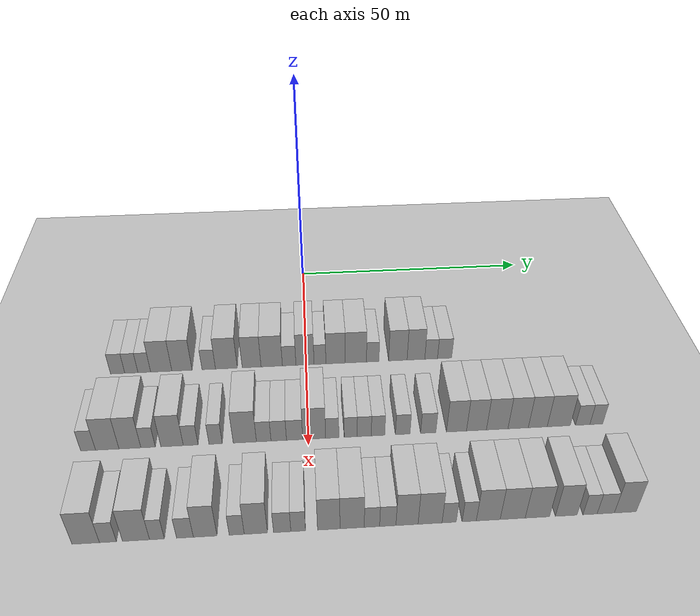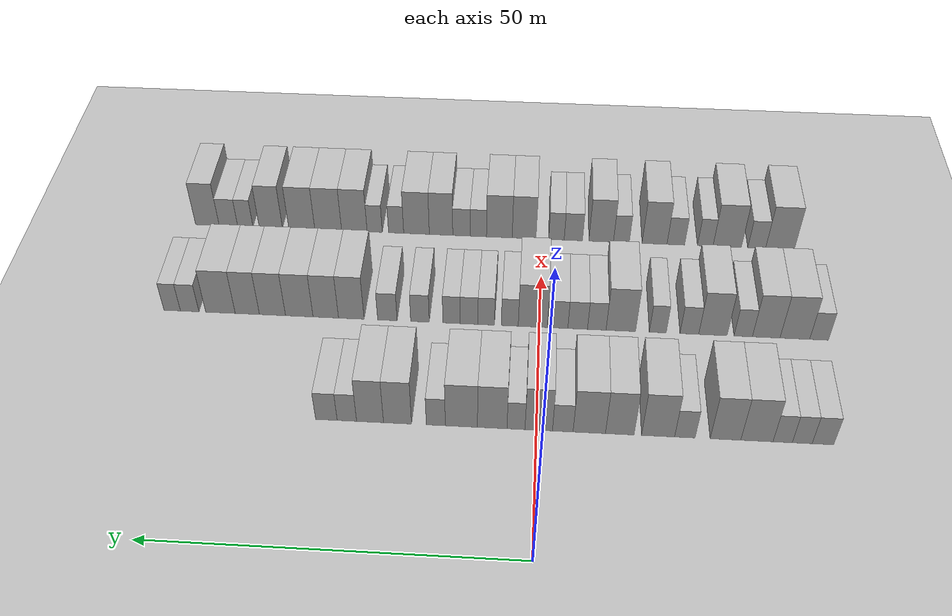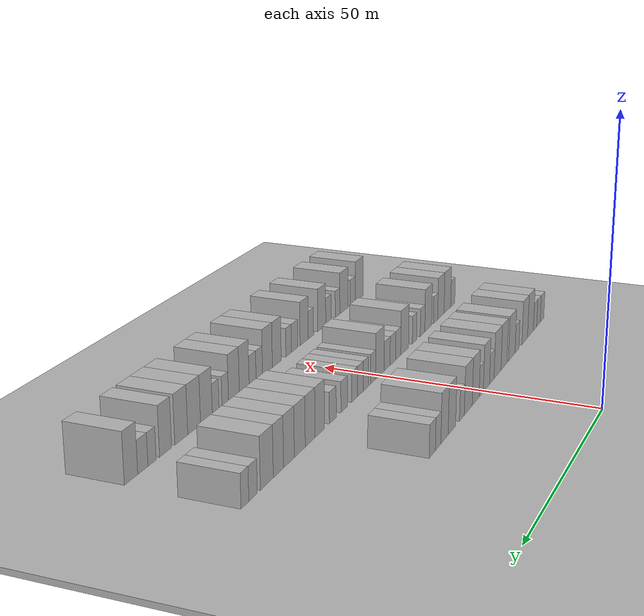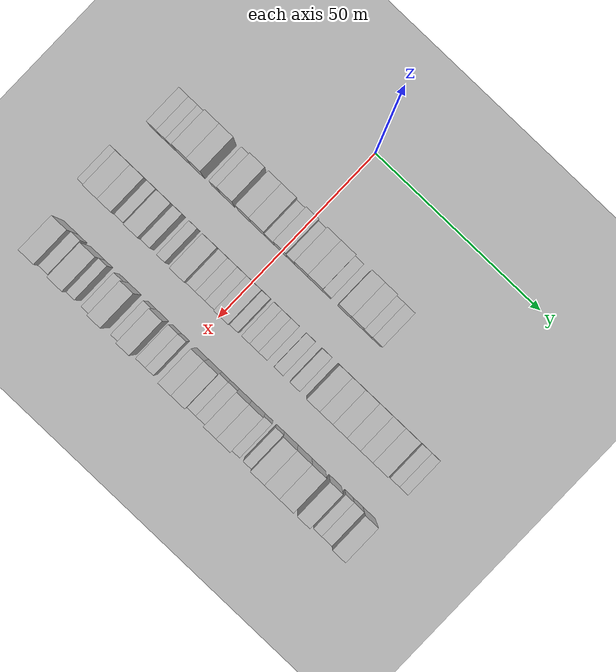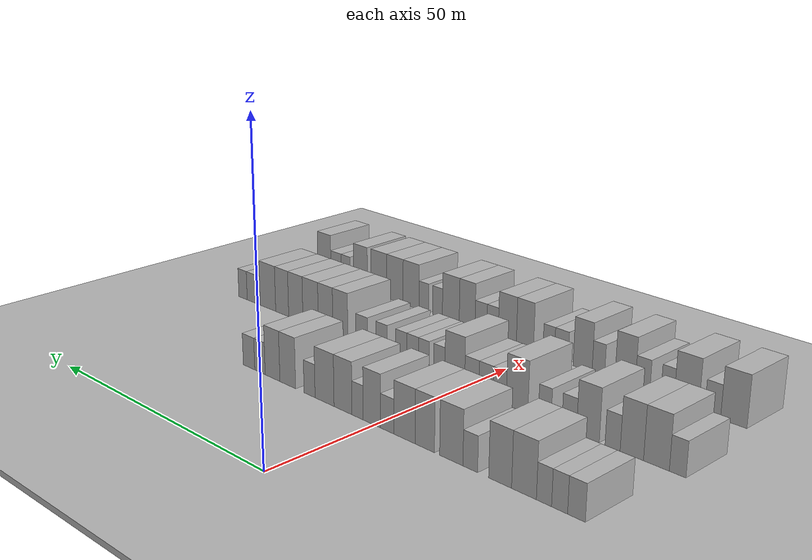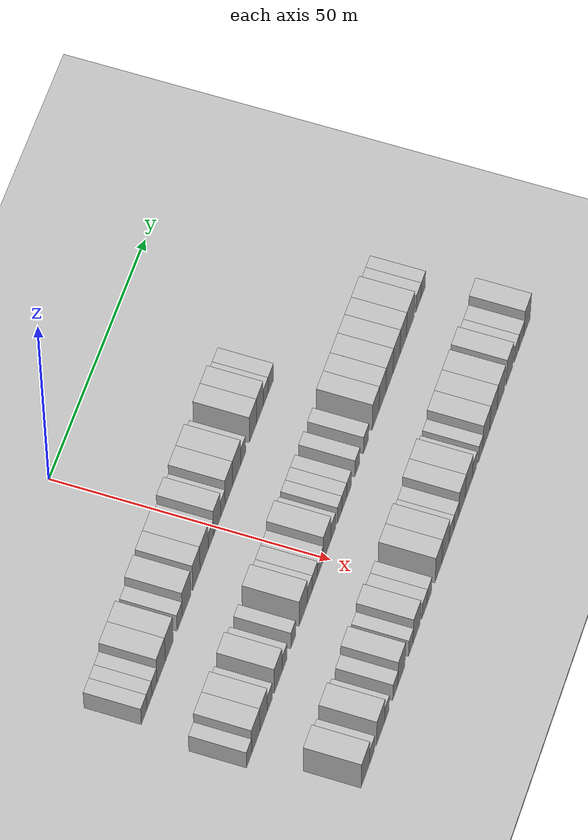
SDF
<sdf version="1.6">
 <world name="default">
  <include><name>ground_plane_1</name><uri>model://HANNAS_ground_plane</uri></include>
  <include>
   <name>ground_plane_2</name>
   <uri>model://HANNAS_ground_plane</uri>
   <pose>100 0 0  0 0 0</pose>
  </include>
  <model name="building_46">
   <static>1</static>
   <pose>25.0000 -38.0021 0 0.000000 0.000000 0.000000</pose>
   <link name="link">
    <pose>0 0 3.00 0 0 0</pose>
    <collision name="collision"><geometry><box><size>10.0000 2.8446 6.0000</size></box></geometry></collision>
    <visual name="visual">
     <cast_shadows>0</cast_shadows>
     <geometry><box><size>10.0000 2.8446 6.0000</size></box></geometry>
     <material>
      <script>
       <uri>model://HANNAS_wall/materials/scripts</uri>
       <uri>model://HANNAS_wall/materials/textures</uri>
       <name>vrc/HANNAS_wall</name>
      </script>
     </material>
    </visual>
   </link>
  </model>
  <model name="building_47">
   <static>1</static>
   <pose>25.0000 -35.2692 0 0.000000 0.000000 0.000000</pose>
   <link name="link">
    <pose>0 0 3.00 0 0 0</pose>
    <collision name="collision"><geometry><box><size>10.0000 2.6212 6.0000</size></box></geometry></collision>
    <visual name="visual">
     <cast_shadows>0</cast_shadows>
     <geometry><box><size>10.0000 2.6212 6.0000</size></box></geometry>
     <material>
      <script>
       <uri>model://HANNAS_wall/materials/scripts</uri>
       <uri>model://HANNAS_wall/materials/textures</uri>
       <name>vrc/HANNAS_wall</name>
      </script>
     </material>
    </visual>
   </link>
  </model>
  <model name="building_48">
   <static>1</static>
   <pose>25.0000 -32.6886 0 0.000000 0.000000 0.000000</pose>
   <link name="link">
    <pose>0 0 3.00 0 0 0</pose>
    <collision name="collision"><geometry><box><size>10.0000 2.5400 6.0000</size></box></geometry></collision>
    <visual name="visual">
     <cast_shadows>0</cast_shadows>
     <geometry><box><size>10.0000 2.5400 6.0000</size></box></geometry>
     <material>
      <script>
       <uri>model://HANNAS_wall/materials/scripts</uri>
       <uri>model://HANNAS_wall/materials/textures</uri>
       <name>vrc/HANNAS_wall</name>
      </script>
     </material>
    </visual>
   </link>
  </model>
  <model name="building_49">
   <static>1</static>
   <pose>25.0000 -29.2893 0 0.000000 0.000000 0.000000</pose>
   <link name="link">
    <pose>0 0 4.50 0 0 0</pose>
    <collision name="collision"><geometry><box><size>10.0000 4.2587 9.0000</size></box></geometry></collision>
    <visual name="visual">
     <cast_shadows>0</cast_shadows>
     <geometry><box><size>10.0000 4.2587 9.0000</size></box></geometry>
     <material>
      <script>
       <uri>model://HANNAS_wall/materials/scripts</uri>
       <uri>model://HANNAS_wall/materials/textures</uri>
       <name>vrc/HANNAS_wall</name>
      </script>
     </material>
    </visual>
   </link>
  </model>
  <model name="building_50">
   <static>1</static>
   <pose>25.0000 -25.1288 0 0.000000 0.000000 0.000000</pose>
   <link name="link">
    <pose>0 0 4.50 0 0 0</pose>
    <collision name="collision"><geometry><box><size>10.0000 4.0623 9.0000</size></box></geometry></collision>
    <visual name="visual">
     <cast_shadows>0</cast_shadows>
     <geometry><box><size>10.0000 4.0623 9.0000</size></box></geometry>
     <material>
      <script>
       <uri>model://HANNAS_wall/materials/scripts</uri>
       <uri>model://HANNAS_wall/materials/textures</uri>
       <name>vrc/HANNAS_wall</name>
      </script>
     </material>
    </visual>
   </link>
  </model>
  <model name="building_51">
   <static>1</static>
   <pose>25.0000 -19.7349 0 0.000000 0.000000 0.000000</pose>
   <link name="link">
    <pose>0 0 3.00 0 0 0</pose>
    <collision name="collision"><geometry><box><size>10.0000 2.7254 6.0000</size></box></geometry></collision>
    <visual name="visual">
     <cast_shadows>0</cast_shadows>
     <geometry><box><size>10.0000 2.7254 6.0000</size></box></geometry>
     <material>
      <script>
       <uri>model://HANNAS_wall/materials/scripts</uri>
       <uri>model://HANNAS_wall/materials/textures</uri>
       <name>vrc/HANNAS_wall</name>
      </script>
     </material>
    </visual>
   </link>
  </model>
  <model name="building_52">
   <static>1</static>
   <pose>25.0000 -16.1695 0 0.000000 0.000000 0.000000</pose>
   <link name="link">
    <pose>0 0 4.50 0 0 0</pose>
    <collision name="collision"><geometry><box><size>10.0000 4.4054 9.0000</size></box></geometry></collision>
    <visual name="visual">
     <cast_shadows>0</cast_shadows>
     <geometry><box><size>10.0000 4.4054 9.0000</size></box></geometry>
     <material>
      <script>
       <uri>model://HANNAS_wall/materials/scripts</uri>
       <uri>model://HANNAS_wall/materials/textures</uri>
       <name>vrc/HANNAS_wall</name>
      </script>
     </material>
    </visual>
   </link>
  </model>
  <model name="building_53">
   <static>1</static>
   <pose>25.0000 -11.0541 0 0.000000 0.000000 0.000000</pose>
   <link name="link">
    <pose>0 0 4.50 0 0 0</pose>
    <collision name="collision"><geometry><box><size>10.0000 3.8252 9.0000</size></box></geometry></collision>
    <visual name="visual">
     <cast_shadows>0</cast_shadows>
     <geometry><box><size>10.0000 3.8252 9.0000</size></box></geometry>
     <material>
      <script>
       <uri>model://HANNAS_wall/materials/scripts</uri>
       <uri>model://HANNAS_wall/materials/textures</uri>
       <name>vrc/HANNAS_wall</name>
      </script>
     </material>
    </visual>
   </link>
  </model>
  <model name="building_54">
   <static>1</static>
   <pose>25.0000 -6.9737 0 0.000000 0.000000 0.000000</pose>
   <link name="link">
    <pose>0 0 4.50 0 0 0</pose>
    <collision name="collision"><geometry><box><size>10.0000 4.3355 9.0000</size></box></geometry></collision>
    <visual name="visual">
     <cast_shadows>0</cast_shadows>
     <geometry><box><size>10.0000 4.3355 9.0000</size></box></geometry>
     <material>
      <script>
       <uri>model://HANNAS_wall/materials/scripts</uri>
       <uri>model://HANNAS_wall/materials/textures</uri>
       <name>vrc/HANNAS_wall</name>
      </script>
     </material>
    </visual>
   </link>
  </model>
  <model name="building_55">
   <static>1</static>
   <pose>25.0000 -3.4249 0 0.000000 0.000000 0.000000</pose>
   <link name="link">
    <pose>0 0 3.00 0 0 0</pose>
    <collision name="collision"><geometry><box><size>10.0000 2.7622 6.0000</size></box></geometry></collision>
    <visual name="visual">
     <cast_shadows>0</cast_shadows>
     <geometry><box><size>10.0000 2.7622 6.0000</size></box></geometry>
     <material>
      <script>
       <uri>model://HANNAS_wall/materials/scripts</uri>
       <uri>model://HANNAS_wall/materials/textures</uri>
       <name>vrc/HANNAS_wall</name>
      </script>
     </material>
    </visual>
   </link>
  </model>
  <model name="building_56">
   <static>1</static>
   <pose>25.0000 -0.1974 0 0.000000 0.000000 0.000000</pose>
   <link name="link">
    <pose>0 0 4.50 0 0 0</pose>
    <collision name="collision"><geometry><box><size>10.0000 3.6928 9.0000</size></box></geometry></collision>
    <visual name="visual">
     <cast_shadows>0</cast_shadows>
     <geometry><box><size>10.0000 3.6928 9.0000</size></box></geometry>
     <material>
      <script>
       <uri>model://HANNAS_wall/materials/scripts</uri>
       <uri>model://HANNAS_wall/materials/textures</uri>
       <name>vrc/HANNAS_wall</name>
      </script>
     </material>
    </visual>
   </link>
  </model>
  <model name="building_57">
   <static>1</static>
   <pose>25.0000 2.8572 0 0.000000 0.000000 0.000000</pose>
   <link name="link">
    <pose>0 0 3.00 0 0 0</pose>
    <collision name="collision"><geometry><box><size>10.0000 2.4165 6.0000</size></box></geometry></collision>
    <visual name="visual">
     <cast_shadows>0</cast_shadows>
     <geometry><box><size>10.0000 2.4165 6.0000</size></box></geometry>
     <material>
      <script>
       <uri>model://HANNAS_wall/materials/scripts</uri>
       <uri>model://HANNAS_wall/materials/textures</uri>
       <name>vrc/HANNAS_wall</name>
      </script>
     </material>
    </visual>
   </link>
  </model>
  <model name="building_58">
   <static>1</static>
   <pose>25.0000 6.0572 0 0.000000 0.000000 0.000000</pose>
   <link name="link">
    <pose>0 0 4.50 0 0 0</pose>
    <collision name="collision"><geometry><box><size>10.0000 3.9834 9.0000</size></box></geometry></collision>
    <visual name="visual">
     <cast_shadows>0</cast_shadows>
     <geometry><box><size>10.0000 3.9834 9.0000</size></box></geometry>
     <material>
      <script>
       <uri>model://HANNAS_wall/materials/scripts</uri>
       <uri>model://HANNAS_wall/materials/textures</uri>
       <name>vrc/HANNAS_wall</name>
      </script>
     </material>
    </visual>
   </link>
  </model>
  <model name="building_59">
   <static>1</static>
   <pose>25.0000 10.2178 0 0.000000 0.000000 0.000000</pose>
   <link name="link">
    <pose>0 0 4.50 0 0 0</pose>
    <collision name="collision"><geometry><box><size>10.0000 4.3378 9.0000</size></box></geometry></collision>
    <visual name="visual">
     <cast_shadows>0</cast_shadows>
     <geometry><box><size>10.0000 4.3378 9.0000</size></box></geometry>
     <material>
      <script>
       <uri>model://HANNAS_wall/materials/scripts</uri>
       <uri>model://HANNAS_wall/materials/textures</uri>
       <name>vrc/HANNAS_wall</name>
      </script>
     </material>
    </visual>
   </link>
  </model>
  <model name="building_60">
   <static>1</static>
   <pose>25.0000 13.6770 0 0.000000 0.000000 0.000000</pose>
   <link name="link">
    <pose>0 0 3.00 0 0 0</pose>
    <collision name="collision"><geometry><box><size>10.0000 2.5806 6.0000</size></box></geometry></collision>
    <visual name="visual">
     <cast_shadows>0</cast_shadows>
     <geometry><box><size>10.0000 2.5806 6.0000</size></box></geometry>
     <material>
      <script>
       <uri>model://HANNAS_wall/materials/scripts</uri>
       <uri>model://HANNAS_wall/materials/textures</uri>
       <name>vrc/HANNAS_wall</name>
      </script>
     </material>
    </visual>
   </link>
  </model>
  <model name="building_61">
   <static>1</static>
   <pose>25.0000 18.8721 0 0.000000 0.000000 0.000000</pose>
   <link name="link">
    <pose>0 0 4.50 0 0 0</pose>
    <collision name="collision"><geometry><box><size>10.0000 3.8097 9.0000</size></box></geometry></collision>
    <visual name="visual">
     <cast_shadows>0</cast_shadows>
     <geometry><box><size>10.0000 3.8097 9.0000</size></box></geometry>
     <material>
      <script>
       <uri>model://HANNAS_wall/materials/scripts</uri>
       <uri>model://HANNAS_wall/materials/textures</uri>
       <name>vrc/HANNAS_wall</name>
      </script>
     </material>
    </visual>
   </link>
  </model>
  <model name="building_62">
   <static>1</static>
   <pose>25.0000 22.6075 0 0.000000 0.000000 0.000000</pose>
   <link name="link">
    <pose>0 0 4.50 0 0 0</pose>
    <collision name="collision"><geometry><box><size>10.0000 3.6612 9.0000</size></box></geometry></collision>
    <visual name="visual">
     <cast_shadows>0</cast_shadows>
     <geometry><box><size>10.0000 3.6612 9.0000</size></box></geometry>
     <material>
      <script>
       <uri>model://HANNAS_wall/materials/scripts</uri>
       <uri>model://HANNAS_wall/materials/textures</uri>
       <name>vrc/HANNAS_wall</name>
      </script>
     </material>
    </visual>
   </link>
  </model>
  <model name="building_63">
   <static>1</static>
   <pose>25.0000 25.7609 0 0.000000 0.000000 0.000000</pose>
   <link name="link">
    <pose>0 0 3.00 0 0 0</pose>
    <collision name="collision"><geometry><box><size>10.0000 2.6454 6.0000</size></box></geometry></collision>
    <visual name="visual">
     <cast_shadows>0</cast_shadows>
     <geometry><box><size>10.0000 2.6454 6.0000</size></box></geometry>
     <material>
      <script>
       <uri>model://HANNAS_wall/materials/scripts</uri>
       <uri>model://HANNAS_wall/materials/textures</uri>
       <name>vrc/HANNAS_wall</name>
      </script>
     </material>
    </visual>
   </link>
  </model>
  <model name="building_64">
   <static>1</static>
   <pose>25.0000 28.5538 0 0.000000 0.000000 0.000000</pose>
   <link name="link">
    <pose>0 0 3.00 0 0 0</pose>
    <collision name="collision"><geometry><box><size>10.0000 2.9404 6.0000</size></box></geometry></collision>
    <visual name="visual">
     <cast_shadows>0</cast_shadows>
     <geometry><box><size>10.0000 2.9404 6.0000</size></box></geometry>
     <material>
      <script>
       <uri>model://HANNAS_wall/materials/scripts</uri>
       <uri>model://HANNAS_wall/materials/textures</uri>
       <name>vrc/HANNAS_wall</name>
      </script>
     </material>
    </visual>
   </link>
  </model>
  <model name="building_163">
   <static>1</static>
   <pose>44.0000 -40.2447 0 0.000000 0.000000 0.000000</pose>
   <link name="link">
    <pose>0 0 3.00 0 0 0</pose>
    <collision name="collision"><geometry><box><size>10.0000 2.6724 6.0000</size></box></geometry></collision>
    <visual name="visual">
     <cast_shadows>0</cast_shadows>
     <geometry><box><size>10.0000 2.6724 6.0000</size></box></geometry>
     <material>
      <script>
       <uri>model://HANNAS_wall/materials/scripts</uri>
       <uri>model://HANNAS_wall/materials/textures</uri>
       <name>vrc/HANNAS_wall</name>
      </script>
     </material>
    </visual>
   </link>
  </model>
  <model name="building_164">
   <static>1</static>
   <pose>44.0000 -36.7880 0 0.000000 0.000000 0.000000</pose>
   <link name="link">
    <pose>0 0 4.50 0 0 0</pose>
    <collision name="collision"><geometry><box><size>10.0000 4.2411 9.0000</size></box></geometry></collision>
    <visual name="visual">
     <cast_shadows>0</cast_shadows>
     <geometry><box><size>10.0000 4.2411 9.0000</size></box></geometry>
     <material>
      <script>
       <uri>model://HANNAS_wall/materials/scripts</uri>
       <uri>model://HANNAS_wall/materials/textures</uri>
       <name>vrc/HANNAS_wall</name>
      </script>
     </material>
    </visual>
   </link>
  </model>
  <model name="building_165">
   <static>1</static>
   <pose>44.0000 -32.6875 0 0.000000 0.000000 0.000000</pose>
   <link name="link">
    <pose>0 0 4.50 0 0 0</pose>
    <collision name="collision"><geometry><box><size>10.0000 3.9598 9.0000</size></box></geometry></collision>
    <visual name="visual">
     <cast_shadows>0</cast_shadows>
     <geometry><box><size>10.0000 3.9598 9.0000</size></box></geometry>
     <material>
      <script>
       <uri>model://HANNAS_wall/materials/scripts</uri>
       <uri>model://HANNAS_wall/materials/textures</uri>
       <name>vrc/HANNAS_wall</name>
      </script>
     </material>
    </visual>
   </link>
  </model>
  <model name="building_166">
   <static>1</static>
   <pose>44.0000 -29.3918 0 0.000000 0.000000 0.000000</pose>
   <link name="link">
    <pose>0 0 3.00 0 0 0</pose>
    <collision name="collision"><geometry><box><size>10.0000 2.6317 6.0000</size></box></geometry></collision>
    <visual name="visual">
     <cast_shadows>0</cast_shadows>
     <geometry><box><size>10.0000 2.6317 6.0000</size></box></geometry>
     <material>
      <script>
       <uri>model://HANNAS_wall/materials/scripts</uri>
       <uri>model://HANNAS_wall/materials/textures</uri>
       <name>vrc/HANNAS_wall</name>
      </script>
     </material>
    </visual>
   </link>
  </model>
  <model name="building_167">
   <static>1</static>
   <pose>44.0000 -25.0308 0 0.000000 0.000000 0.000000</pose>
   <link name="link">
    <pose>0 0 4.50 0 0 0</pose>
    <collision name="collision"><geometry><box><size>10.0000 4.0902 9.0000</size></box></geometry></collision>
    <visual name="visual">
     <cast_shadows>0</cast_shadows>
     <geometry><box><size>10.0000 4.0902 9.0000</size></box></geometry>
     <material>
      <script>
       <uri>model://HANNAS_wall/materials/scripts</uri>
       <uri>model://HANNAS_wall/materials/textures</uri>
       <name>vrc/HANNAS_wall</name>
      </script>
     </material>
    </visual>
   </link>
  </model>
  <model name="building_168">
   <static>1</static>
   <pose>44.0000 -21.6405 0 0.000000 0.000000 0.000000</pose>
   <link name="link">
    <pose>0 0 3.00 0 0 0</pose>
    <collision name="collision"><geometry><box><size>10.0000 2.6905 6.0000</size></box></geometry></collision>
    <visual name="visual">
     <cast_shadows>0</cast_shadows>
     <geometry><box><size>10.0000 2.6905 6.0000</size></box></geometry>
     <material>
      <script>
       <uri>model://HANNAS_wall/materials/scripts</uri>
       <uri>model://HANNAS_wall/materials/textures</uri>
       <name>vrc/HANNAS_wall</name>
      </script>
     </material>
    </visual>
   </link>
  </model>
  <model name="building_169">
   <static>1</static>
   <pose>44.0000 -17.0781 0 0.000000 0.000000 0.000000</pose>
   <link name="link">
    <pose>0 0 3.00 0 0 0</pose>
    <collision name="collision"><geometry><box><size>10.0000 2.4343 6.0000</size></box></geometry></collision>
    <visual name="visual">
     <cast_shadows>0</cast_shadows>
     <geometry><box><size>10.0000 2.4343 6.0000</size></box></geometry>
     <material>
      <script>
       <uri>model://HANNAS_wall/materials/scripts</uri>
       <uri>model://HANNAS_wall/materials/textures</uri>
       <name>vrc/HANNAS_wall</name>
      </script>
     </material>
    </visual>
   </link>
  </model>
  <model name="building_170">
   <static>1</static>
   <pose>44.0000 -11.7226 0 0.000000 0.000000 0.000000</pose>
   <link name="link">
    <pose>0 0 4.50 0 0 0</pose>
    <collision name="collision"><geometry><box><size>10.0000 4.2767 9.0000</size></box></geometry></collision>
    <visual name="visual">
     <cast_shadows>0</cast_shadows>
     <geometry><box><size>10.0000 4.2767 9.0000</size></box></geometry>
     <material>
      <script>
       <uri>model://HANNAS_wall/materials/scripts</uri>
       <uri>model://HANNAS_wall/materials/textures</uri>
       <name>vrc/HANNAS_wall</name>
      </script>
     </material>
    </visual>
   </link>
  </model>
  <model name="building_171">
   <static>1</static>
   <pose>44.0000 -8.2396 0 0.000000 0.000000 0.000000</pose>
   <link name="link">
    <pose>0 0 3.00 0 0 0</pose>
    <collision name="collision"><geometry><box><size>10.0000 2.6893 6.0000</size></box></geometry></collision>
    <visual name="visual">
     <cast_shadows>0</cast_shadows>
     <geometry><box><size>10.0000 2.6893 6.0000</size></box></geometry>
     <material>
      <script>
       <uri>model://HANNAS_wall/materials/scripts</uri>
       <uri>model://HANNAS_wall/materials/textures</uri>
       <name>vrc/HANNAS_wall</name>
      </script>
     </material>
    </visual>
   </link>
  </model>
  <model name="building_172">
   <static>1</static>
   <pose>44.0000 -5.4687 0 0.000000 0.000000 0.000000</pose>
   <link name="link">
    <pose>0 0 3.00 0 0 0</pose>
    <collision name="collision"><geometry><box><size>10.0000 2.8526 6.0000</size></box></geometry></collision>
    <visual name="visual">
     <cast_shadows>0</cast_shadows>
     <geometry><box><size>10.0000 2.8526 6.0000</size></box></geometry>
     <material>
      <script>
       <uri>model://HANNAS_wall/materials/scripts</uri>
       <uri>model://HANNAS_wall/materials/textures</uri>
       <name>vrc/HANNAS_wall</name>
      </script>
     </material>
    </visual>
   </link>
  </model>
  <model name="building_173">
   <static>1</static>
   <pose>44.0000 -2.5449 0 0.000000 0.000000 0.000000</pose>
   <link name="link">
    <pose>0 0 3.00 0 0 0</pose>
    <collision name="collision"><geometry><box><size>10.0000 2.9950 6.0000</size></box></geometry></collision>
    <visual name="visual">
     <cast_shadows>0</cast_shadows>
     <geometry><box><size>10.0000 2.9950 6.0000</size></box></geometry>
     <material>
      <script>
       <uri>model://HANNAS_wall/materials/scripts</uri>
       <uri>model://HANNAS_wall/materials/textures</uri>
       <name>vrc/HANNAS_wall</name>
      </script>
     </material>
    </visual>
   </link>
  </model>
  <model name="building_174">
   <static>1</static>
   <pose>44.0000 1.0721 0 0.000000 0.000000 0.000000</pose>
   <link name="link">
    <pose>0 0 4.50 0 0 0</pose>
    <collision name="collision"><geometry><box><size>10.0000 4.2389 9.0000</size></box></geometry></collision>
    <visual name="visual">
     <cast_shadows>0</cast_shadows>
     <geometry><box><size>10.0000 4.2389 9.0000</size></box></geometry>
     <material>
      <script>
       <uri>model://HANNAS_wall/materials/scripts</uri>
       <uri>model://HANNAS_wall/materials/textures</uri>
       <name>vrc/HANNAS_wall</name>
      </script>
     </material>
    </visual>
   </link>
  </model>
  <model name="building_175">
   <static>1</static>
   <pose>44.0000 4.4271 0 0.000000 0.000000 0.000000</pose>
   <link name="link">
    <pose>0 0 3.00 0 0 0</pose>
    <collision name="collision"><geometry><box><size>10.0000 2.4710 6.0000</size></box></geometry></collision>
    <visual name="visual">
     <cast_shadows>0</cast_shadows>
     <geometry><box><size>10.0000 2.4710 6.0000</size></box></geometry>
     <material>
      <script>
       <uri>model://HANNAS_wall/materials/scripts</uri>
       <uri>model://HANNAS_wall/materials/textures</uri>
       <name>vrc/HANNAS_wall</name>
      </script>
     </material>
    </visual>
   </link>
  </model>
  <model name="building_176">
   <static>1</static>
   <pose>44.0000 7.8661 0 0.000000 0.000000 0.000000</pose>
   <link name="link">
    <pose>0 0 3.00 0 0 0</pose>
    <collision name="collision"><geometry><box><size>10.0000 2.4071 6.0000</size></box></geometry></collision>
    <visual name="visual">
     <cast_shadows>0</cast_shadows>
     <geometry><box><size>10.0000 2.4071 6.0000</size></box></geometry>
     <material>
      <script>
       <uri>model://HANNAS_wall/materials/scripts</uri>
       <uri>model://HANNAS_wall/materials/textures</uri>
       <name>vrc/HANNAS_wall</name>
      </script>
     </material>
    </visual>
   </link>
  </model>
  <model name="building_177">
   <static>1</static>
   <pose>44.0000 10.3805 0 0.000000 0.000000 0.000000</pose>
   <link name="link">
    <pose>0 0 3.00 0 0 0</pose>
    <collision name="collision"><geometry><box><size>10.0000 2.6217 6.0000</size></box></geometry></collision>
    <visual name="visual">
     <cast_shadows>0</cast_shadows>
     <geometry><box><size>10.0000 2.6217 6.0000</size></box></geometry>
     <material>
      <script>
       <uri>model://HANNAS_wall/materials/scripts</uri>
       <uri>model://HANNAS_wall/materials/textures</uri>
       <name>vrc/HANNAS_wall</name>
      </script>
     </material>
    </visual>
   </link>
  </model>
  <model name="building_178">
   <static>1</static>
   <pose>44.0000 12.9569 0 0.000000 0.000000 0.000000</pose>
   <link name="link">
    <pose>0 0 3.00 0 0 0</pose>
    <collision name="collision"><geometry><box><size>10.0000 2.5312 6.0000</size></box></geometry></collision>
    <visual name="visual">
     <cast_shadows>0</cast_shadows>
     <geometry><box><size>10.0000 2.5312 6.0000</size></box></geometry>
     <material>
      <script>
       <uri>model://HANNAS_wall/materials/scripts</uri>
       <uri>model://HANNAS_wall/materials/textures</uri>
       <name>vrc/HANNAS_wall</name>
      </script>
     </material>
    </visual>
   </link>
  </model>
  <model name="building_179">
   <static>1</static>
   <pose>44.0000 17.5885 0 0.000000 0.000000 0.000000</pose>
   <link name="link">
    <pose>0 0 3.00 0 0 0</pose>
    <collision name="collision"><geometry><box><size>10.0000 2.7321 6.0000</size></box></geometry></collision>
    <visual name="visual">
     <cast_shadows>0</cast_shadows>
     <geometry><box><size>10.0000 2.7321 6.0000</size></box></geometry>
     <material>
      <script>
       <uri>model://HANNAS_wall/materials/scripts</uri>
       <uri>model://HANNAS_wall/materials/textures</uri>
       <name>vrc/HANNAS_wall</name>
      </script>
     </material>
    </visual>
   </link>
  </model>
  <model name="building_180">
   <static>1</static>
   <pose>44.0000 22.3871 0 0.000000 0.000000 0.000000</pose>
   <link name="link">
    <pose>0 0 3.00 0 0 0</pose>
    <collision name="collision"><geometry><box><size>10.0000 2.8651 6.0000</size></box></geometry></collision>
    <visual name="visual">
     <cast_shadows>0</cast_shadows>
     <geometry><box><size>10.0000 2.8651 6.0000</size></box></geometry>
     <material>
      <script>
       <uri>model://HANNAS_wall/materials/scripts</uri>
       <uri>model://HANNAS_wall/materials/textures</uri>
       <name>vrc/HANNAS_wall</name>
      </script>
     </material>
    </visual>
   </link>
  </model>
  <model name="building_181">
   <static>1</static>
   <pose>44.0000 27.7113 0 0.000000 0.000000 0.000000</pose>
   <link name="link">
    <pose>0 0 4.50 0 0 0</pose>
    <collision name="collision"><geometry><box><size>10.0000 3.7833 9.0000</size></box></geometry></collision>
    <visual name="visual">
     <cast_shadows>0</cast_shadows>
     <geometry><box><size>10.0000 3.7833 9.0000</size></box></geometry>
     <material>
      <script>
       <uri>model://HANNAS_wall/materials/scripts</uri>
       <uri>model://HANNAS_wall/materials/textures</uri>
       <name>vrc/HANNAS_wall</name>
      </script>
     </material>
    </visual>
   </link>
  </model>
  <model name="building_182">
   <static>1</static>
   <pose>44.0000 31.4894 0 0.000000 0.000000 0.000000</pose>
   <link name="link">
    <pose>0 0 4.50 0 0 0</pose>
    <collision name="collision"><geometry><box><size>10.0000 3.7730 9.0000</size></box></geometry></collision>
    <visual name="visual">
     <cast_shadows>0</cast_shadows>
     <geometry><box><size>10.0000 3.7730 9.0000</size></box></geometry>
     <material>
      <script>
       <uri>model://HANNAS_wall/materials/scripts</uri>
       <uri>model://HANNAS_wall/materials/textures</uri>
       <name>vrc/HANNAS_wall</name>
      </script>
     </material>
    </visual>
   </link>
  </model>
  <model name="building_183">
   <static>1</static>
   <pose>44.0000 35.4214 0 0.000000 0.000000 0.000000</pose>
   <link name="link">
    <pose>0 0 4.50 0 0 0</pose>
    <collision name="collision"><geometry><box><size>10.0000 4.0909 9.0000</size></box></geometry></collision>
    <visual name="visual">
     <cast_shadows>0</cast_shadows>
     <geometry><box><size>10.0000 4.0909 9.0000</size></box></geometry>
     <material>
      <script>
       <uri>model://HANNAS_wall/materials/scripts</uri>
       <uri>model://HANNAS_wall/materials/textures</uri>
       <name>vrc/HANNAS_wall</name>
      </script>
     </material>
    </visual>
   </link>
  </model>
  <model name="building_184">
   <static>1</static>
   <pose>44.0000 39.4064 0 0.000000 0.000000 0.000000</pose>
   <link name="link">
    <pose>0 0 4.50 0 0 0</pose>
    <collision name="collision"><geometry><box><size>10.0000 3.8791 9.0000</size></box></geometry></collision>
    <visual name="visual">
     <cast_shadows>0</cast_shadows>
     <geometry><box><size>10.0000 3.8791 9.0000</size></box></geometry>
     <material>
      <script>
       <uri>model://HANNAS_wall/materials/scripts</uri>
       <uri>model://HANNAS_wall/materials/textures</uri>
       <name>vrc/HANNAS_wall</name>
      </script>
     </material>
    </visual>
   </link>
  </model>
  <model name="building_185">
   <static>1</static>
   <pose>44.0000 43.1508 0 0.000000 0.000000 0.000000</pose>
   <link name="link">
    <pose>0 0 4.50 0 0 0</pose>
    <collision name="collision"><geometry><box><size>10.0000 3.6097 9.0000</size></box></geometry></collision>
    <visual name="visual">
     <cast_shadows>0</cast_shadows>
     <geometry><box><size>10.0000 3.6097 9.0000</size></box></geometry>
     <material>
      <script>
       <uri>model://HANNAS_wall/materials/scripts</uri>
       <uri>model://HANNAS_wall/materials/textures</uri>
       <name>vrc/HANNAS_wall</name>
      </script>
     </material>
    </visual>
   </link>
  </model>
  <model name="building_186">
   <static>1</static>
   <pose>44.0000 47.1601 0 0.000000 0.000000 0.000000</pose>
   <link name="link">
    <pose>0 0 4.50 0 0 0</pose>
    <collision name="collision"><geometry><box><size>10.0000 4.4090 9.0000</size></box></geometry></collision>
    <visual name="visual">
     <cast_shadows>0</cast_shadows>
     <geometry><box><size>10.0000 4.4090 9.0000</size></box></geometry>
     <material>
      <script>
       <uri>model://HANNAS_wall/materials/scripts</uri>
       <uri>model://HANNAS_wall/materials/textures</uri>
       <name>vrc/HANNAS_wall</name>
      </script>
     </material>
    </visual>
   </link>
  </model>
  <model name="building_187">
   <static>1</static>
   <pose>44.0000 51.7505 0 0.000000 0.000000 0.000000</pose>
   <link name="link">
    <pose>0 0 3.00 0 0 0</pose>
    <collision name="collision"><geometry><box><size>10.0000 2.7717 6.0000</size></box></geometry></collision>
    <visual name="visual">
     <cast_shadows>0</cast_shadows>
     <geometry><box><size>10.0000 2.7717 6.0000</size></box></geometry>
     <material>
      <script>
       <uri>model://HANNAS_wall/materials/scripts</uri>
       <uri>model://HANNAS_wall/materials/textures</uri>
       <name>vrc/HANNAS_wall</name>
      </script>
     </material>
    </visual>
   </link>
  </model>
  <model name="building_188">
   <static>1</static>
   <pose>44.0000 54.3708 0 0.000000 0.000000 0.000000</pose>
   <link name="link">
    <pose>0 0 3.00 0 0 0</pose>
    <collision name="collision"><geometry><box><size>10.0000 2.4689 6.0000</size></box></geometry></collision>
    <visual name="visual">
     <cast_shadows>0</cast_shadows>
     <geometry><box><size>10.0000 2.4689 6.0000</size></box></geometry>
     <material>
      <script>
       <uri>model://HANNAS_wall/materials/scripts</uri>
       <uri>model://HANNAS_wall/materials/textures</uri>
       <name>vrc/HANNAS_wall</name>
      </script>
     </material>
    </visual>
   </link>
  </model>
  <model name="building_281">
   <static>1</static>
   <pose>63.0000 -36.9866 0 0.000000 0.000000 0.000000</pose>
   <link name="link">
    <pose>0 0 4.50 0 0 0</pose>
    <collision name="collision"><geometry><box><size>10.0000 4.4355 9.0000</size></box></geometry></collision>
    <visual name="visual">
     <cast_shadows>0</cast_shadows>
     <geometry><box><size>10.0000 4.4355 9.0000</size></box></geometry>
     <material>
      <script>
       <uri>model://HANNAS_wall/materials/scripts</uri>
       <uri>model://HANNAS_wall/materials/textures</uri>
       <name>vrc/HANNAS_wall</name>
      </script>
     </material>
    </visual>
   </link>
  </model>
  <model name="building_282">
   <static>1</static>
   <pose>63.0000 -33.3930 0 0.000000 0.000000 0.000000</pose>
   <link name="link">
    <pose>0 0 3.00 0 0 0</pose>
    <collision name="collision"><geometry><box><size>10.0000 2.7516 6.0000</size></box></geometry></collision>
    <visual name="visual">
     <cast_shadows>0</cast_shadows>
     <geometry><box><size>10.0000 2.7516 6.0000</size></box></geometry>
     <material>
      <script>
       <uri>model://HANNAS_wall/materials/scripts</uri>
       <uri>model://HANNAS_wall/materials/textures</uri>
       <name>vrc/HANNAS_wall</name>
      </script>
     </material>
    </visual>
   </link>
  </model>
  <model name="building_283">
   <static>1</static>
   <pose>63.0000 -28.8192 0 0.000000 0.000000 0.000000</pose>
   <link name="link">
    <pose>0 0 4.50 0 0 0</pose>
    <collision name="collision"><geometry><box><size>10.0000 4.3961 9.0000</size></box></geometry></collision>
    <visual name="visual">
     <cast_shadows>0</cast_shadows>
     <geometry><box><size>10.0000 4.3961 9.0000</size></box></geometry>
     <material>
      <script>
       <uri>model://HANNAS_wall/materials/scripts</uri>
       <uri>model://HANNAS_wall/materials/textures</uri>
       <name>vrc/HANNAS_wall</name>
      </script>
     </material>
    </visual>
   </link>
  </model>
  <model name="building_284">
   <static>1</static>
   <pose>63.0000 -25.4136 0 0.000000 0.000000 0.000000</pose>
   <link name="link">
    <pose>0 0 3.00 0 0 0</pose>
    <collision name="collision"><geometry><box><size>10.0000 2.4150 6.0000</size></box></geometry></collision>
    <visual name="visual">
     <cast_shadows>0</cast_shadows>
     <geometry><box><size>10.0000 2.4150 6.0000</size></box></geometry>
     <material>
      <script>
       <uri>model://HANNAS_wall/materials/scripts</uri>
       <uri>model://HANNAS_wall/materials/textures</uri>
       <name>vrc/HANNAS_wall</name>
      </script>
     </material>
    </visual>
   </link>
  </model>
  <model name="building_285">
   <static>1</static>
   <pose>63.0000 -20.8370 0 0.000000 0.000000 0.000000</pose>
   <link name="link">
    <pose>0 0 3.00 0 0 0</pose>
    <collision name="collision"><geometry><box><size>10.0000 2.7382 6.0000</size></box></geometry></collision>
    <visual name="visual">
     <cast_shadows>0</cast_shadows>
     <geometry><box><size>10.0000 2.7382 6.0000</size></box></geometry>
     <material>
      <script>
       <uri>model://HANNAS_wall/materials/scripts</uri>
       <uri>model://HANNAS_wall/materials/textures</uri>
       <name>vrc/HANNAS_wall</name>
      </script>
     </material>
    </visual>
   </link>
  </model>
  <model name="building_286">
   <static>1</static>
   <pose>63.0000 -17.5236 0 0.000000 0.000000 0.000000</pose>
   <link name="link">
    <pose>0 0 4.50 0 0 0</pose>
    <collision name="collision"><geometry><box><size>10.0000 3.8887 9.0000</size></box></geometry></collision>
    <visual name="visual">
     <cast_shadows>0</cast_shadows>
     <geometry><box><size>10.0000 3.8887 9.0000</size></box></geometry>
     <material>
      <script>
       <uri>model://HANNAS_wall/materials/scripts</uri>
       <uri>model://HANNAS_wall/materials/textures</uri>
       <name>vrc/HANNAS_wall</name>
      </script>
     </material>
    </visual>
   </link>
  </model>
  <model name="building_287">
   <static>1</static>
   <pose>63.0000 -12.3392 0 0.000000 0.000000 0.000000</pose>
   <link name="link">
    <pose>0 0 3.00 0 0 0</pose>
    <collision name="collision"><geometry><box><size>10.0000 2.4801 6.0000</size></box></geometry></collision>
    <visual name="visual">
     <cast_shadows>0</cast_shadows>
     <geometry><box><size>10.0000 2.4801 6.0000</size></box></geometry>
     <material>
      <script>
       <uri>model://HANNAS_wall/materials/scripts</uri>
       <uri>model://HANNAS_wall/materials/textures</uri>
       <name>vrc/HANNAS_wall</name>
      </script>
     </material>
    </visual>
   </link>
  </model>
  <model name="building_288">
   <static>1</static>
   <pose>63.0000 -9.1795 0 0.000000 0.000000 0.000000</pose>
   <link name="link">
    <pose>0 0 4.50 0 0 0</pose>
    <collision name="collision"><geometry><box><size>10.0000 3.8394 9.0000</size></box></geometry></collision>
    <visual name="visual">
     <cast_shadows>0</cast_shadows>
     <geometry><box><size>10.0000 3.8394 9.0000</size></box></geometry>
     <material>
      <script>
       <uri>model://HANNAS_wall/materials/scripts</uri>
       <uri>model://HANNAS_wall/materials/textures</uri>
       <name>vrc/HANNAS_wall</name>
      </script>
     </material>
    </visual>
   </link>
  </model>
  <model name="building_289">
   <static>1</static>
   <pose>63.0000 -4.8238 0 0.000000 0.000000 0.000000</pose>
   <link name="link">
    <pose>0 0 3.00 0 0 0</pose>
    <collision name="collision"><geometry><box><size>10.0000 2.8719 6.0000</size></box></geometry></collision>
    <visual name="visual">
     <cast_shadows>0</cast_shadows>
     <geometry><box><size>10.0000 2.8719 6.0000</size></box></geometry>
     <material>
      <script>
       <uri>model://HANNAS_wall/materials/scripts</uri>
       <uri>model://HANNAS_wall/materials/textures</uri>
       <name>vrc/HANNAS_wall</name>
      </script>
     </material>
    </visual>
   </link>
  </model>
  <model name="building_290">
   <static>1</static>
   <pose>63.0000 -2.1725 0 0.000000 0.000000 0.000000</pose>
   <link name="link">
    <pose>0 0 3.00 0 0 0</pose>
    <collision name="collision"><geometry><box><size>10.0000 2.4307 6.0000</size></box></geometry></collision>
    <visual name="visual">
     <cast_shadows>0</cast_shadows>
     <geometry><box><size>10.0000 2.4307 6.0000</size></box></geometry>
     <material>
      <script>
       <uri>model://HANNAS_wall/materials/scripts</uri>
       <uri>model://HANNAS_wall/materials/textures</uri>
       <name>vrc/HANNAS_wall</name>
      </script>
     </material>
    </visual>
   </link>
  </model>
  <model name="building_291">
   <static>1</static>
   <pose>63.0000 2.9137 0 0.000000 0.000000 0.000000</pose>
   <link name="link">
    <pose>0 0 4.50 0 0 0</pose>
    <collision name="collision"><geometry><box><size>10.0000 3.7419 9.0000</size></box></geometry></collision>
    <visual name="visual">
     <cast_shadows>0</cast_shadows>
     <geometry><box><size>10.0000 3.7419 9.0000</size></box></geometry>
     <material>
      <script>
       <uri>model://HANNAS_wall/materials/scripts</uri>
       <uri>model://HANNAS_wall/materials/textures</uri>
       <name>vrc/HANNAS_wall</name>
      </script>
     </material>
    </visual>
   </link>
  </model>
  <model name="building_292">
   <static>1</static>
   <pose>63.0000 6.8099 0 0.000000 0.000000 0.000000</pose>
   <link name="link">
    <pose>0 0 4.50 0 0 0</pose>
    <collision name="collision"><geometry><box><size>10.0000 4.0505 9.0000</size></box></geometry></collision>
    <visual name="visual">
     <cast_shadows>0</cast_shadows>
     <geometry><box><size>10.0000 4.0505 9.0000</size></box></geometry>
     <material>
      <script>
       <uri>model://HANNAS_wall/materials/scripts</uri>
       <uri>model://HANNAS_wall/materials/textures</uri>
       <name>vrc/HANNAS_wall</name>
      </script>
     </material>
    </visual>
   </link>
  </model>
  <model name="building_293">
   <static>1</static>
   <pose>63.0000 10.1270 0 0.000000 0.000000 0.000000</pose>
   <link name="link">
    <pose>0 0 3.00 0 0 0</pose>
    <collision name="collision"><geometry><box><size>10.0000 2.5836 6.0000</size></box></geometry></collision>
    <visual name="visual">
     <cast_shadows>0</cast_shadows>
     <geometry><box><size>10.0000 2.5836 6.0000</size></box></geometry>
     <material>
      <script>
       <uri>model://HANNAS_wall/materials/scripts</uri>
       <uri>model://HANNAS_wall/materials/textures</uri>
       <name>vrc/HANNAS_wall</name>
      </script>
     </material>
    </visual>
   </link>
  </model>
  <model name="building_294">
   <static>1</static>
   <pose>63.0000 12.7908 0 0.000000 0.000000 0.000000</pose>
   <link name="link">
    <pose>0 0 3.00 0 0 0</pose>
    <collision name="collision"><geometry><box><size>10.0000 2.7440 6.0000</size></box></geometry></collision>
    <visual name="visual">
     <cast_shadows>0</cast_shadows>
     <geometry><box><size>10.0000 2.7440 6.0000</size></box></geometry>
     <material>
      <script>
       <uri>model://HANNAS_wall/materials/scripts</uri>
       <uri>model://HANNAS_wall/materials/textures</uri>
       <name>vrc/HANNAS_wall</name>
      </script>
     </material>
    </visual>
   </link>
  </model>
  <model name="building_295">
   <static>1</static>
   <pose>63.0000 16.0214 0 0.000000 0.000000 0.000000</pose>
   <link name="link">
    <pose>0 0 4.50 0 0 0</pose>
    <collision name="collision"><geometry><box><size>10.0000 3.7172 9.0000</size></box></geometry></collision>
    <visual name="visual">
     <cast_shadows>0</cast_shadows>
     <geometry><box><size>10.0000 3.7172 9.0000</size></box></geometry>
     <material>
      <script>
       <uri>model://HANNAS_wall/materials/scripts</uri>
       <uri>model://HANNAS_wall/materials/textures</uri>
       <name>vrc/HANNAS_wall</name>
      </script>
     </material>
    </visual>
   </link>
  </model>
  <model name="building_296">
   <static>1</static>
   <pose>63.0000 19.9101 0 0.000000 0.000000 0.000000</pose>
   <link name="link">
    <pose>0 0 4.50 0 0 0</pose>
    <collision name="collision"><geometry><box><size>10.0000 4.0603 9.0000</size></box></geometry></collision>
    <visual name="visual">
     <cast_shadows>0</cast_shadows>
     <geometry><box><size>10.0000 4.0603 9.0000</size></box></geometry>
     <material>
      <script>
       <uri>model://HANNAS_wall/materials/scripts</uri>
       <uri>model://HANNAS_wall/materials/textures</uri>
       <name>vrc/HANNAS_wall</name>
      </script>
     </material>
    </visual>
   </link>
  </model>
  <model name="building_297">
   <static>1</static>
   <pose>63.0000 23.1408 0 0.000000 0.000000 0.000000</pose>
   <link name="link">
    <pose>0 0 3.00 0 0 0</pose>
    <collision name="collision"><geometry><box><size>10.0000 2.4011 6.0000</size></box></geometry></collision>
    <visual name="visual">
     <cast_shadows>0</cast_shadows>
     <geometry><box><size>10.0000 2.4011 6.0000</size></box></geometry>
     <material>
      <script>
       <uri>model://HANNAS_wall/materials/scripts</uri>
       <uri>model://HANNAS_wall/materials/textures</uri>
       <name>vrc/HANNAS_wall</name>
      </script>
     </material>
    </visual>
   </link>
  </model>
  <model name="building_298">
   <static>1</static>
   <pose>63.0000 26.5448 0 0.000000 0.000000 0.000000</pose>
   <link name="link">
    <pose>0 0 3.00 0 0 0</pose>
    <collision name="collision"><geometry><box><size>10.0000 2.4068 6.0000</size></box></geometry></collision>
    <visual name="visual">
     <cast_shadows>0</cast_shadows>
     <geometry><box><size>10.0000 2.4068 6.0000</size></box></geometry>
     <material>
      <script>
       <uri>model://HANNAS_wall/materials/scripts</uri>
       <uri>model://HANNAS_wall/materials/textures</uri>
       <name>vrc/HANNAS_wall</name>
      </script>
     </material>
    </visual>
   </link>
  </model>
  <model name="building_299">
   <static>1</static>
   <pose>63.0000 29.7794 0 0.000000 0.000000 0.000000</pose>
   <link name="link">
    <pose>0 0 4.50 0 0 0</pose>
    <collision name="collision"><geometry><box><size>10.0000 4.0624 9.0000</size></box></geometry></collision>
    <visual name="visual">
     <cast_shadows>0</cast_shadows>
     <geometry><box><size>10.0000 4.0624 9.0000</size></box></geometry>
     <material>
      <script>
       <uri>model://HANNAS_wall/materials/scripts</uri>
       <uri>model://HANNAS_wall/materials/textures</uri>
       <name>vrc/HANNAS_wall</name>
      </script>
     </material>
    </visual>
   </link>
  </model>
  <model name="building_300">
   <static>1</static>
   <pose>63.0000 33.9536 0 0.000000 0.000000 0.000000</pose>
   <link name="link">
    <pose>0 0 4.50 0 0 0</pose>
    <collision name="collision"><geometry><box><size>10.0000 4.2861 9.0000</size></box></geometry></collision>
    <visual name="visual">
     <cast_shadows>0</cast_shadows>
     <geometry><box><size>10.0000 4.2861 9.0000</size></box></geometry>
     <material>
      <script>
       <uri>model://HANNAS_wall/materials/scripts</uri>
       <uri>model://HANNAS_wall/materials/textures</uri>
       <name>vrc/HANNAS_wall</name>
      </script>
     </material>
    </visual>
   </link>
  </model>
  <model name="building_301">
   <static>1</static>
   <pose>63.0000 38.1809 0 0.000000 0.000000 0.000000</pose>
   <link name="link">
    <pose>0 0 4.50 0 0 0</pose>
    <collision name="collision"><geometry><box><size>10.0000 4.1686 9.0000</size></box></geometry></collision>
    <visual name="visual">
     <cast_shadows>0</cast_shadows>
     <geometry><box><size>10.0000 4.1686 9.0000</size></box></geometry>
     <material>
      <script>
       <uri>model://HANNAS_wall/materials/scripts</uri>
       <uri>model://HANNAS_wall/materials/textures</uri>
       <name>vrc/HANNAS_wall</name>
      </script>
     </material>
    </visual>
   </link>
  </model>
  <model name="building_302">
   <static>1</static>
   <pose>63.0000 43.1361 0 0.000000 0.000000 0.000000</pose>
   <link name="link">
    <pose>0 0 4.50 0 0 0</pose>
    <collision name="collision"><geometry><box><size>10.0000 3.7417 9.0000</size></box></geometry></collision>
    <visual name="visual">
     <cast_shadows>0</cast_shadows>
     <geometry><box><size>10.0000 3.7417 9.0000</size></box></geometry>
     <material>
      <script>
       <uri>model://HANNAS_wall/materials/scripts</uri>
       <uri>model://HANNAS_wall/materials/textures</uri>
       <name>vrc/HANNAS_wall</name>
      </script>
     </material>
    </visual>
   </link>
  </model>
  <model name="building_303">
   <static>1</static>
   <pose>63.0000 47.2343 0 0.000000 0.000000 0.000000</pose>
   <link name="link">
    <pose>0 0 3.00 0 0 0</pose>
    <collision name="collision"><geometry><box><size>10.0000 2.4547 6.0000</size></box></geometry></collision>
    <visual name="visual">
     <cast_shadows>0</cast_shadows>
     <geometry><box><size>10.0000 2.4547 6.0000</size></box></geometry>
     <material>
      <script>
       <uri>model://HANNAS_wall/materials/scripts</uri>
       <uri>model://HANNAS_wall/materials/textures</uri>
       <name>vrc/HANNAS_wall</name>
      </script>
     </material>
    </visual>
   </link>
  </model>
  <model name="building_304">
   <static>1</static>
   <pose>63.0000 49.9509 0 0.000000 0.000000 0.000000</pose>
   <link name="link">
    <pose>0 0 3.00 0 0 0</pose>
    <collision name="collision"><geometry><box><size>10.0000 2.9786 6.0000</size></box></geometry></collision>
    <visual name="visual">
     <cast_shadows>0</cast_shadows>
     <geometry><box><size>10.0000 2.9786 6.0000</size></box></geometry>
     <material>
      <script>
       <uri>model://HANNAS_wall/materials/scripts</uri>
       <uri>model://HANNAS_wall/materials/textures</uri>
       <name>vrc/HANNAS_wall</name>
      </script>
     </material>
    </visual>
   </link>
  </model>
  <model name="building_305">
   <static>1</static>
   <pose>63.0000 53.3408 0 0.000000 0.000000 0.000000</pose>
   <link name="link">
    <pose>0 0 4.50 0 0 0</pose>
    <collision name="collision"><geometry><box><size>10.0000 3.8012 9.0000</size></box></geometry></collision>
    <visual name="visual">
     <cast_shadows>0</cast_shadows>
     <geometry><box><size>10.0000 3.8012 9.0000</size></box></geometry>
     <material>
      <script>
       <uri>model://HANNAS_wall/materials/scripts</uri>
       <uri>model://HANNAS_wall/materials/textures</uri>
       <name>vrc/HANNAS_wall</name>
      </script>
     </material>
    </visual>
   </link>
  </model>
 </world>
</sdf>
